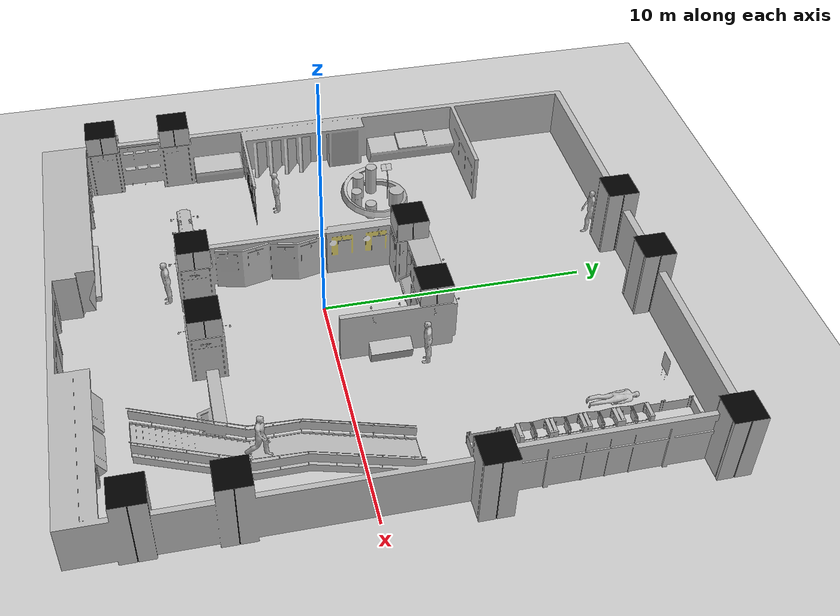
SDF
<sdf version="1.7">
 <world name="yolo_test_world">
  <light name="sun" type="directional">
   <pose>0 0 10 0 -0 0</pose>
   <diffuse>0.8 0.8 0.8 1</diffuse>
   <specular>0.2 0.2 0.2 1</specular>
   <attenuation>
    <range>1000</range>
    <constant>0.9</constant>
    <linear>0.01</linear>
    <quadratic>0.001</quadratic>
   </attenuation>
   <direction>-0.5 0.1 -0.9</direction>
   <spot><inner_angle>0</inner_angle><outer_angle>0</outer_angle><falloff>0</falloff></spot>
  </light>
  <model name="ground_plane">
   <static>1</static>
   <link name="link">
    <collision name="collision">
     <geometry><plane><normal>0 0 1</normal><size>100 100</size></plane></geometry>
     <surface><friction><ode><mu>100</mu><mu2>50</mu2></ode></friction></surface>
    </collision>
    <visual name="visual">
     <cast_shadows>0</cast_shadows>
     <geometry><plane><normal>0 0 1</normal><size>100 100</size></plane></geometry>
     <material>
      <script><uri>file://media/materials/scripts/gazebo.material</uri><name>Gazebo/Grey</name></script>
     </material>
    </visual>
   </link>
  </model>
  <model name="person_standing">
   <link name="link">
    <inertial>
     <pose>0 -0.1 0.95 0 -0 0</pose>
     <mass>80</mass>
     <inertia><ixx>24.88</ixx><ixy>0</ixy><ixz>0</ixz><iyy>25.73</iyy><iyz>0</iyz><izz>2.48</izz></inertia>
    </inertial>
    <collision name="bottom">
     <pose>0 -0.1 0.01 0 -0 0</pose>
     <geometry><box><size>0.5 0.35 0.02</size></box></geometry>
    </collision>
    <collision name="person">
     <pose>0 0 0.02 0.04 -0 0</pose>
     <geometry><mesh><uri>model://person_standing/meshes/standing.dae</uri></mesh></geometry>
    </collision>
    <visual name="visual">
     <pose>0 0 0.02 0.04 -0 0</pose>
     <geometry><mesh><uri>model://person_standing/meshes/standing.dae</uri></mesh></geometry>
    </visual>
   </link>
   <pose>3.40625 3.21832 0 0 0 -0.35</pose>
   <static>1</static>
  </model>
  <gravity>0 0 -9.8</gravity>
  <magnetic_field>6e-06 2.3e-05 -4.2e-05</magnetic_field>
  <atmosphere type="adiabatic"/>
  <physics type="ode">
   <max_step_size>0.001</max_step_size>
   <real_time_factor>1</real_time_factor>
   <real_time_update_rate>1000</real_time_update_rate>
  </physics>
  <scene><ambient>0.4 0.4 0.4 1</ambient><background>0.7 0.7 0.7 1</background><shadows>1</shadows></scene>
  <audio><device>default</device></audio>
  <spherical_coordinates>
   <surface_model>EARTH_WGS84</surface_model>
   <latitude_deg>0</latitude_deg>
   <longitude_deg>0</longitude_deg>
   <elevation>0</elevation>
   <heading_deg>0</heading_deg>
  </spherical_coordinates>
  <model name="iscas_museum">
   <link name="link">
    <inertial><mass>15</mass></inertial>
    <collision name="collision">
     <pose>0 0 0 0 0 -1.57</pose>
     <geometry><mesh><uri>model://iscas_museum/meshes/ISCAS_museum.dae</uri></mesh></geometry>
    </collision>
    <visual name="visual">
     <pose>0 0 0 0 0 -1.57</pose>
     <geometry><mesh><uri>model://iscas_museum/meshes/ISCAS_museum.dae</uri></mesh></geometry>
    </visual>
   </link>
   <static>1</static>
   <pose>-0.103792 0.794815 -0.217839 0 -0 0</pose>
  </model>
  <model name="person_standing_0">
   <link name="link">
    <inertial>
     <pose>0 -0.1 0.95 0 -0 0</pose>
     <mass>80</mass>
     <inertia><ixx>24.88</ixx><ixy>0</ixy><ixz>0</ixz><iyy>25.73</iyy><iyz>0</iyz><izz>2.48</izz></inertia>
    </inertial>
    <collision name="bottom">
     <pose>0 -0.1 0.01 0 -0 0</pose>
     <geometry><box><size>0.5 0.35 0.02</size></box></geometry>
    </collision>
    <collision name="person">
     <pose>0 0 0.02 0.04 -0 0</pose>
     <geometry><mesh><uri>model://person_standing/meshes/standing.dae</uri></mesh></geometry>
    </collision>
    <visual name="visual">
     <pose>0 0 0.02 0.04 -0 0</pose>
     <geometry><mesh><uri>model://person_standing/meshes/standing.dae</uri></mesh></geometry>
    </visual>
   </link>
   <pose>7.33267 -1.70314 0.275343 1.59084 1.2e-05 -3.10191</pose>
  </model>
  <model name="person_walking">
   <link name="link">
    <inertial>
     <pose>0 0 0.95 0 -0 0</pose>
     <mass>80</mass>
     <inertia><ixx>27.82</ixx><ixy>0</ixy><ixz>0</ixz><iyy>24.88</iyy><iyz>0</iyz><izz>4.57</izz></inertia>
    </inertial>
    <collision name="bottom">
     <pose>0 0 0.01 0 -0 0</pose>
     <geometry><box><size>0.35 0.75 0.02</size></box></geometry>
    </collision>
    <collision name="person">
     <pose>0 0 -0.02 0 -0 0</pose>
     <geometry><mesh><uri>model://person_walking/meshes/walking.dae</uri></mesh></geometry>
    </collision>
    <visual name="visual">
     <pose>0 0 -0.02 0 -0 0</pose>
     <geometry><mesh><uri>model://person_walking/meshes/walking.dae</uri></mesh></geometry>
    </visual>
   </link>
   <pose>7.61962 -3.43963 1.39699 0.009923 0.003961 2.76173</pose>
  </model>
  <model name="person_standing_1">
   <link name="link">
    <inertial>
     <pose>0 -0.1 0.95 0 -0 0</pose>
     <mass>80</mass>
     <inertia><ixx>24.88</ixx><ixy>0</ixy><ixz>0</ixz><iyy>25.73</iyy><iyz>0</iyz><izz>2.48</izz></inertia>
    </inertial>
    <collision name="bottom">
     <pose>0 -0.1 0.01 0 -0 0</pose>
     <geometry><box><size>0.5 0.35 0.02</size></box></geometry>
    </collision>
    <collision name="person">
     <pose>0 0 0.02 0.04 -0 0</pose>
     <geometry><mesh><uri>model://person_standing/meshes/standing.dae</uri></mesh></geometry>
    </collision>
    <visual name="visual">
     <pose>0 0 0.02 0.04 -0 0</pose>
     <geometry><mesh><uri>model://person_standing/meshes/standing.dae</uri></mesh></geometry>
    </visual>
   </link>
   <pose>-6.12138 -0.756084 -1e-06 -1e-06 1e-06 0.00026</pose>
  </model>
  <model name="person_standing_2">
   <link name="link">
    <inertial>
     <pose>0 -0.1 0.95 0 -0 0</pose>
     <mass>80</mass>
     <inertia><ixx>24.88</ixx><ixy>0</ixy><ixz>0</ixz><iyy>25.73</iyy><iyz>0</iyz><izz>2.48</izz></inertia>
    </inertial>
    <collision name="bottom">
     <pose>0 -0.1 0.01 0 -0 0</pose>
     <geometry><box><size>0.5 0.35 0.02</size></box></geometry>
    </collision>
    <collision name="person">
     <pose>0 0 0.02 0.04 -0 0</pose>
     <geometry><mesh><uri>model://person_standing/meshes/standing.dae</uri></mesh></geometry>
    </collision>
    <visual name="visual">
     <pose>0 0 0.02 0.04 -0 0</pose>
     <geometry><mesh><uri>model://person_standing/meshes/standing.dae</uri></mesh></geometry>
    </visual>
   </link>
   <pose>-1.58753 -5.59253 -0 -1e-06 1e-06 0.000588</pose>
  </model>
  <model name="person_walking_0">
   <link name="link">
    <inertial>
     <pose>0 0 0.95 0 -0 0</pose>
     <mass>80</mass>
     <inertia><ixx>27.82</ixx><ixy>0</ixy><ixz>0</ixz><iyy>24.88</iyy><iyz>0</iyz><izz>4.57</izz></inertia>
    </inertial>
    <collision name="bottom">
     <pose>0 0 0.01 0 -0 0</pose>
     <geometry><box><size>0.35 0.75 0.02</size></box></geometry>
    </collision>
    <collision name="person">
     <pose>0 0 -0.02 0 -0 0</pose>
     <geometry><mesh><uri>model://person_walking/meshes/walking.dae</uri></mesh></geometry>
    </collision>
    <visual name="visual">
     <pose>0 0 -0.02 0 -0 0</pose>
     <geometry><mesh><uri>model://person_walking/meshes/walking.dae</uri></mesh></geometry>
    </visual>
   </link>
   <pose>-2.40691 11.3483 0.006948 0 -0.039716 0.004161</pose>
  </model>
  <model name="person_standing_0_clone">
   <link name="link">
    <inertial>
     <pose>0 -0.1 0.95 0 -0 0</pose>
     <mass>80</mass>
     <inertia><ixx>24.88</ixx><ixy>0</ixy><ixz>0</ixz><iyy>25.73</iyy><iyz>0</iyz><izz>2.48</izz></inertia>
    </inertial>
    <collision name="bottom">
     <pose>0 -0.1 0.01 0 -0 0</pose>
     <geometry><box><size>0.5 0.35 0.02</size></box></geometry>
    </collision>
    <collision name="person">
     <pose>0 0 0.02 0.04 -0 0</pose>
     <geometry><mesh><uri>model://person_standing/meshes/standing.dae</uri></mesh></geometry>
    </collision>
    <visual name="visual">
     <pose>0 0 0.02 0.04 -0 0</pose>
     <geometry><mesh><uri>model://person_standing/meshes/standing.dae</uri></mesh></geometry>
    </visual>
   </link>
   <pose>6.63299 8.05183 0.275346 1.59084 0 -3.10191</pose>
  </model>
 </world>
</sdf>
